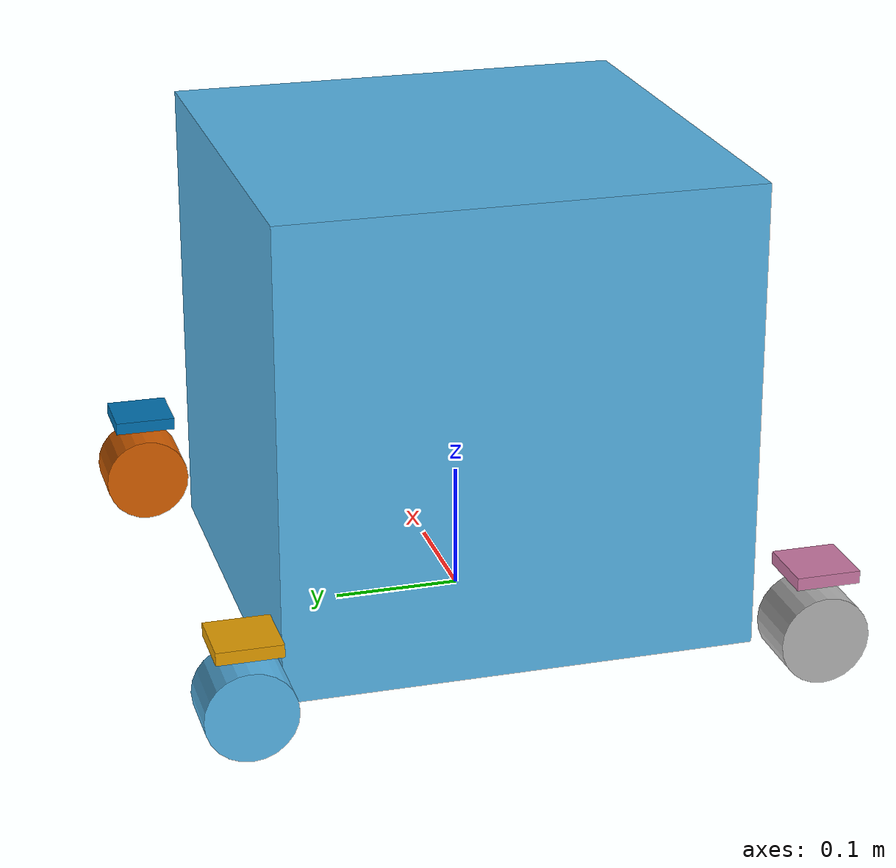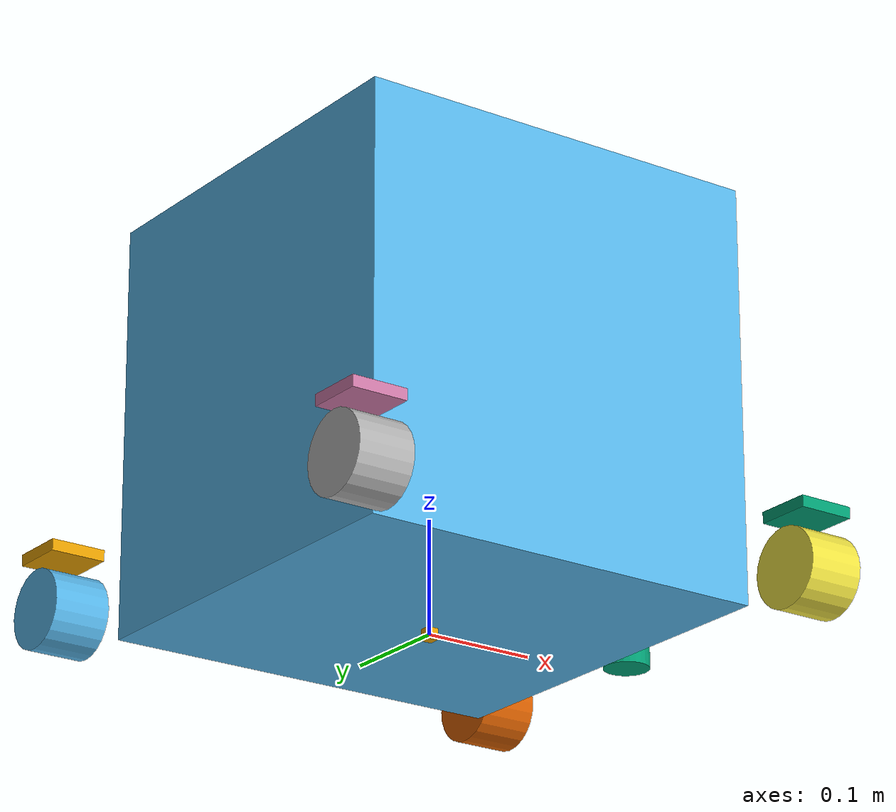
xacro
<?xml version="1.0" ?>
<robot name="rr_swerve"
    xmlns:xacro="http://ros.org/wiki/xacro">

    <xacro:include filename="$(find nhk2023_simulator)/launch/worlds/models/swerve_body.urdf.xacro" />
    <xacro:include filename="$(find nhk2023_simulator)/launch/worlds/models/swerve_wheel.urdf.xacro" />

    <xacro:include filename="$(find nhk2023_simulator)/launch/worlds/models/lidar.urdf.xacro" />
    <xacro:include filename="$(find nhk2023_simulator)/launch/worlds/models/imu.urdf.xacro" />

    <xacro:wheel rl="rf" parent="base_link" />
    <xacro:wheel rl="lf" parent="base_link" />
    <xacro:wheel rl="rb" parent="base_link" />
    <xacro:wheel rl="lb" parent="base_link" />

    <xacro:laser_macro prefix="lidar" parent="base_link" xyz="0.205 0 0.04" rpy="0 0 0"/>
    <xacro:imu_macro prefix="imu" parent="base_link" xyz="0.0 0 0.10" />
</robot>

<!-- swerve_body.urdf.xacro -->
<robot name="body"
    xmlns:xacro="http://ros.org/wiki/xacro">

    <link name="base_link">
        <visual>
            <geometry>
                <box size="0.01 0.01 0.01" />
            </geometry>
        </visual>
        <collision>
            <geometry>
                <box size="0.01 0.01 0.01" />
            </geometry>
        </collision>
        <inertial>
            <origin xyz="0 0 0" rpy="0 0 0" />
            <mass value="0.1" />
            <inertia ixx="0.0001" ixy="0" ixz="0" iyx="0" iyy="0.0001" iyz="0" izx="0" izy="0" izz="0.0001" />
        </inertial>
    </link>

    <xacro:property name="b_m" value="10"/>
    <xacro:property name="b_m2" value="${b_m/12}"/>
    <!--for calculation of inertia-->
    <xacro:property name="b_w" value="0.37"/>
    <xacro:property name="b_h" value="0.37"/>
    <xacro:property name="b_d" value="0.37"/>

    <link name="body">
        <visual>
            <geometry>
                <box size="${b_d} ${b_w} ${b_h}" />
            </geometry>
        </visual>
        <collision>
            <geometry>
                <box size="${b_d*0.95} ${b_w*0.95} ${b_h*0.95}" />
            </geometry>
        </collision>
        <inertial>
            <origin xyz="0 0 0" rpy="0 0 0" />
            <mass value="${b_m}" />
            <inertia ixx="${b_m2*(b_h*b_h+b_w*b_w)}" ixy="0" ixz="0" iyx="0" iyy="${b_m2*(b_h*b_h+b_d*b_d)}" iyz="0" izx="0" izy="0" izz="${b_m2*(b_w*b_w+b_d*b_d)}" />
        </inertial>
    </link>

    <joint name="base_body_joint" type="revolute">
        <parent link="base_link" />
        <child link="body" />
        <origin xyz="0 0 0.195" rpy="0 0 0" />
        <limit lower="0" upper="0" effort="0" velocity="0" />
    </joint>
</robot>

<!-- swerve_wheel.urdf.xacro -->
<robot name="wheel"
    xmlns:xacro="http://ros.org/wiki/xacro">

    <xacro:property name="PI" value="3.1415926535897931"/>
    <xacro:property name="wheel_radius" value="0.035"/>
    <xacro:property name="wheel_height" value="0.05"/>
    <xacro:property name="wheel_mass" value="0.50"/>

    <xacro:macro name="wheel" params="rl parent">

        <xacro:property name="b_m" value="0.1"/>
        <xacro:property name="b_m2" value="${b_m/12}"/>
        <!--for calculation of inertia-->
        <xacro:property name="b_w" value="0.01"/>
        <xacro:property name="b_h" value="0.05"/>
        <xacro:property name="b_d" value="0.05"/>

        <link name="wheel_${rl}_round_table">
            <visual>
                <geometry>
                    <box size="${b_d} ${b_w} ${b_h}" />
                </geometry>
            </visual>
            <collision>
                <geometry>
                    <box size="${b_d*0.95} ${b_w*0.95} ${b_h*0.95}" />
                </geometry>
            </collision>
            <inertial>
                <origin xyz="0 0 0" rpy="0 0 0" />
                <mass value="${b_m}" />
                <inertia ixx="${b_m2*(b_h*b_h+b_w*b_w)}" ixy="0" ixz="0" iyx="0" iyy="${b_m2*(b_h*b_h+b_d*b_d)}" iyz="0" izx="0" izy="0" izz="${b_m2*(b_w*b_w+b_d*b_d)}" />
            </inertial>
        </link>

        <link name="wheel_${rl}">
            <visual>
                <geometry>
                    <cylinder length="${wheel_height}" radius="${wheel_radius}" />
                </geometry>
            </visual>
            <collision>
                <geometry>
                    <cylinder radius="${wheel_radius}" length="${wheel_height}" />
                </geometry>
                <surface>
                    <friction>
                        <ode>
                            <mu>1</mu>
                            <mu2>1</mu2>
                            <slip1>0.035</slip1>
                            <slip2>0</slip2>
                            <fdir1>0 0 1</fdir1>
                        </ode>
                    </friction>
                </surface>
            </collision>
            <inertial>
                <origin xyz="0 0 0" rpy="0 0 0" />
                <mass value="${wheel_mass}" />
                <inertia ixx="${wheel_mass*(3*wheel_radius*wheel_radius+wheel_height*wheel_height)/12}" ixy="0" ixz="0" iyx="0" iyy="${wheel_mass*(3*wheel_radius*wheel_radius+wheel_height*wheel_height)/12}" iyz="0" izx="0" izy="0" izz="${wheel_mass*(wheel_radius*wheel_radius)/2}" />
            </inertial>
        </link>

        <joint name="wheel_${rl}_joint" type="continuous">
            <parent link="wheel_${rl}_round_table" />
            <child link="wheel_${rl}" />
            <origin xyz="0.0 -0.05 0.0" rpy="0 ${PI/2} 0" />
            <!--z: position from base_link - position from body-->
            <axis xyz="0 0 -1" />
            <limit effort="6.0" velocity="60.0" />
            <!-- maximum torqe(<8.82), maximum velocity-->
            <dynamics damping="0.1"/>
        </joint>

        <joint name="wheel_${rl}_angular_joint" type="continuous">
            <parent link="${parent}" />
            <child link="wheel_${rl}_round_table" />
            <xacro:if value="${rl == 'rf'}">
                <origin xyz="0.22 -0.22 0.085" rpy="${PI/2} 0 0" />
                <!--z: position from base_link - position from body-->
            </xacro:if>
            <xacro:if value="${rl == 'lf'}">
                <origin xyz="0.22 0.22 0.085" rpy="${PI/2} 0 0" />
            </xacro:if>
            <xacro:if value="${rl == 'rb'}">
                <origin xyz="-0.22 -0.22 0.085" rpy="${PI/2} 0 0" />
                <!--z: position from base_link - position from body-->
            </xacro:if>
            <xacro:if value="${rl == 'lb'}">
                <origin xyz="-0.22 0.22 0.085" rpy="${PI/2} 0 0" />
            </xacro:if>
            <axis xyz="0 1 0" />
            <limit effort="6.0" velocity="12.0" />
            <!-- maximum torqe(<8.82), maximum velocity-->
            <dynamics damping="0.1"/>
        </joint>

        <plugin filename="gz-sim-joint-controller-system" name="gz::sim::systems::JointController">
            <joint_name>wheel_${rl}_angular_joint</joint_name>
            <initial_velocity>5.0</initial_velocity>
        </plugin>

    </xacro:macro>
</robot>

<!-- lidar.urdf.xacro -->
<robot name="lidar"
    xmlns:xacro="http://ros.org/wiki/xacro">
    <xacro:macro name="laser_macro" params="parent prefix xyz rpy">
        <joint name="${prefix}_joint" type="fixed">
            <parent link="${parent}"/>
            <child link="${prefix}_link"/>
            <origin xyz="${xyz}" rpy="${rpy}"/>
        </joint>
        <link name="${prefix}_link">
            <visual>
                <origin xyz="0 0 0" rpy="0 0 0" />
                <geometry>
                    <cylinder radius="0.02" length="0.06" />
                </geometry>
            </visual>
            <collision>
                <origin xyz="0 0 0" rpy="0 0 0"/>
                <geometry>
                    <cylinder radius="0.02" length="0.06" />
                </geometry>
            </collision>
            <sensor type="gpu_lidar" name="${prefix}">
                <pose>0 0 0 0 0 0</pose>
                <visualize>false</visualize>
                <update_rate>10</update_rate>
                <lidar>
                    <scan>
                        <horizontal>
                            <samples>400</samples>
                            <resolution>1</resolution>
                            <min_angle>${radians(-180)}</min_angle>
                            <max_angle>${radians(180)}</max_angle>
                        </horizontal>
                    </scan>
                    <range>
                        <min>0.10</min>
                        <max>20.0</max>
                        <resolution>0.01</resolution>
                    </range>
                    <noise>
                        <type>gaussian</type>
                        <mean>0.0</mean>
                        <stddev>0.01</stddev>
                    </noise>
                </lidar>
            </sensor>
        </link>

        <plugin filename="libignition-gazebo-imu-system.so" name="ignition::gazebo::systems::Imu">
        </plugin>
    </xacro:macro>
</robot>

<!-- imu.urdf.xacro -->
<robot name="imu"
    xmlns:xacro="http://ros.org/wiki/xacro">
    <xacro:macro name="imu_macro" params="parent prefix xyz">
        <joint name="imu_joint" type="revolute">
            <parent link="${parent}"/>
            <child link="${prefix}_link"/>
            <origin xyz="${xyz}" rpy="0 0 0"/>
            <limit lower="0" upper="0" effort="0" velocity="0"/>
        </joint>
        <link name="${prefix}_link">
            <visual>
                <geometry>
                    <box size="0.1 0.1 0.1" />
                </geometry>
            </visual>
            <collision>
                <geometry>
                    <box size="0.1 0.1 0.1" />
                </geometry>
            </collision>
            <inertial>
                <origin xyz="0 0 0" rpy="0 0 0" />
                <mass value="0.1" />
                <inertia ixx="0.0001" ixy="0" ixz="0" iyx="0" iyy="0.0001" iyz="0" izx="0" izy="0" izz="0.0001" />
            </inertial>
            <sensor name="imu_sensor" type="imu">
                <always_on>true</always_on>
                <update_rate>100</update_rate>
                <visualize>true</visualize>
                <topic>imu</topic>
                <pose>0 0 0 0 0 0</pose>
            </sensor>
        </link>
        <gazebo>

        </gazebo>
    </xacro:macro>
</robot>
